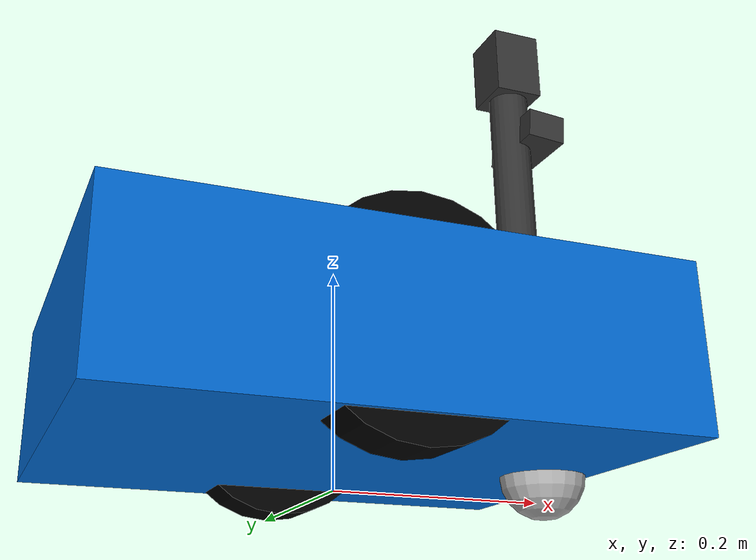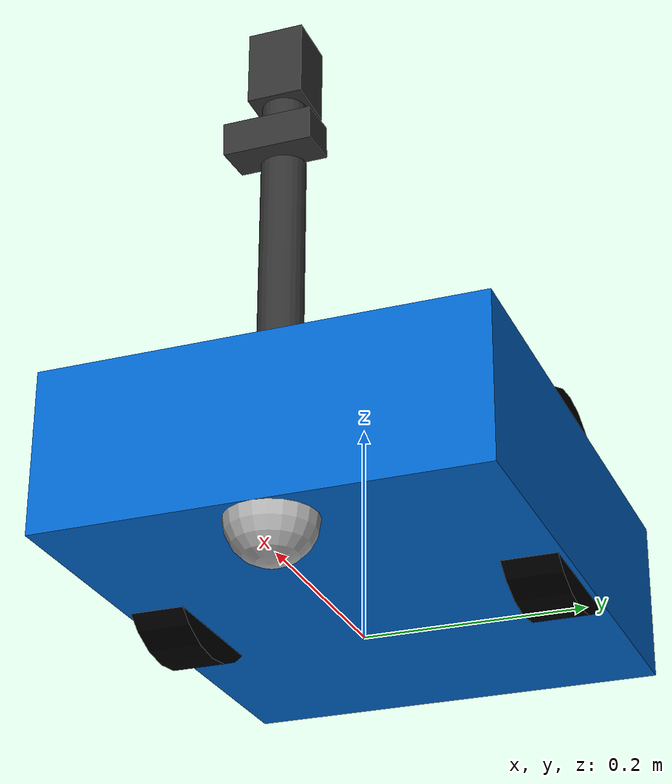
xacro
<?xml version="1.0"?>
<robot name="mobile_robot" xmlns:xacro="http://www.ros.org/wiki/xacro">

  <!--  PARAMETERS                                                          -->
  <xacro:property name="base_length"  value="0.50"/>
  <xacro:property name="base_width"   value="0.40"/>
  <xacro:property name="base_height"  value="0.15"/>
  <xacro:property name="base_mass"    value="10.0"/>

  <xacro:property name="wheel_radius" value="0.10"/>
  <xacro:property name="wheel_width"  value="0.05"/>
  <xacro:property name="wheel_mass"   value="0.50"/>
  <xacro:property name="wheel_sep"    value="0.34"/>   <!-- distance between wheels -->

  <xacro:property name="caster_radius" value="0.04"/>
  <xacro:property name="caster_mass"   value="0.10"/>

  <!-- Inertia macros -->
  <xacro:macro name="box_inertia" params="m l w h">
    <inertial>
      <mass value="${m}"/>
      <inertia ixx="${m*(w*w+h*h)/12}" ixy="0" ixz="0"
               iyy="${m*(l*l+h*h)/12}" iyz="0"
               izz="${m*(l*l+w*w)/12}"/>
    </inertial>
  </xacro:macro>

  <xacro:macro name="cylinder_inertia" params="m r h">
    <inertial>
      <mass value="${m}"/>
      <inertia ixx="${m*(3*r*r+h*h)/12}" ixy="0" ixz="0"
               iyy="${m*(3*r*r+h*h)/12}" iyz="0"
               izz="${m*r*r/2}"/>
    </inertial>
  </xacro:macro>

  <xacro:macro name="sphere_inertia" params="m r">
    <inertial>
      <mass value="${m}"/>
      <inertia ixx="${2*m*r*r/5}" ixy="0" ixz="0"
               iyy="${2*m*r*r/5}" iyz="0"
               izz="${2*m*r*r/5}"/>
    </inertial>
  </xacro:macro>

  <!--  MATERIALS                                                           -->
  <material name="dark_grey"><color rgba="0.2 0.2 0.2 1.0"/></material>
  <material name="light_grey"><color rgba="0.7 0.7 0.7 1.0"/></material>
  <material name="black"><color rgba="0.0 0.0 0.0 1.0"/></material>
  <material name="blue"><color rgba="0.0 0.4 0.8 1.0"/></material>
  <material name="red"><color rgba="0.8 0.1 0.1 1.0"/></material>

  <!--  BASE LINK (chassis)                                                 -->
  <link name="base_footprint"/>

  <joint name="base_footprint_joint" type="fixed">
    <parent link="base_footprint"/>
    <child  link="base_link"/>
    <origin xyz="0 0 ${wheel_radius}" rpy="0 0 0"/>
  </joint>

  <link name="base_link">
    <visual>
      <geometry>
        <box size="${base_length} ${base_width} ${base_height}"/>
      </geometry>
      <material name="blue"/>
    </visual>
    <collision>
      <geometry>
        <box size="${base_length} ${base_width} ${base_height}"/>
      </geometry>
    </collision>
    <xacro:box_inertia m="${base_mass}" l="${base_length}" w="${base_width}" h="${base_height}"/>
  </link>

  <!--  WHEEL MACRO                                                         -->
  <xacro:macro name="wheel" params="prefix reflect">
    <link name="${prefix}_wheel">
      <visual>
        <geometry>
          <cylinder radius="${wheel_radius}" length="${wheel_width}"/>
        </geometry>
        <material name="black"/>
      </visual>
      <collision>
        <geometry>
          <cylinder radius="${wheel_radius}" length="${wheel_width}"/>
        </geometry>
      </collision>
      <xacro:cylinder_inertia m="${wheel_mass}" r="${wheel_radius}" h="${wheel_width}"/>
    </link>

    <joint name="${prefix}_wheel_joint" type="continuous">
      <parent link="base_link"/>
      <child  link="${prefix}_wheel"/>
      <origin xyz="0 ${reflect * wheel_sep/2} 0" rpy="${-pi/2} 0 0"/>
      <axis xyz="0 0 1"/>
      <dynamics damping="0.01" friction="0.1"/>
    </joint>
  </xacro:macro>

  <xacro:wheel prefix="left"  reflect="1"/>
  <xacro:wheel prefix="right" reflect="-1"/>

  <!--  CASTER WHEEL (front)                                                -->
  <link name="caster_wheel">
    <visual>
      <geometry><sphere radius="${caster_radius}"/></geometry>
      <material name="light_grey"/>
    </visual>
    <collision>
      <geometry><sphere radius="${caster_radius}"/></geometry>
    </collision>
    <xacro:sphere_inertia m="${caster_mass}" r="${caster_radius}"/>
  </link>

  <joint name="caster_wheel_joint" type="fixed">
    <parent link="base_link"/>
    <child  link="caster_wheel"/>
    <origin xyz="${base_length/2 - caster_radius} 0 ${-base_height/2}" rpy="0 0 0"/>
  </joint>

  <!--  SENSOR MAST                                                         -->
  <link name="sensor_mast">
    <visual>
      <geometry><cylinder radius="0.02" length="0.25"/></geometry>
      <material name="dark_grey"/>
    </visual>
    <collision>
      <geometry><cylinder radius="0.02" length="0.25"/></geometry>
    </collision>
    <inertial>
      <mass value="0.3"/>
      <inertia ixx="0.001" ixy="0" ixz="0" iyy="0.001" iyz="0" izz="0.0001"/>
    </inertial>
  </link>

  <joint name="sensor_mast_joint" type="fixed">
    <parent link="base_link"/>
    <child  link="sensor_mast"/>
    <origin xyz="${base_length/2 - 0.05} 0 ${base_height/2 + 0.125}" rpy="0 0 0"/>
  </joint>

  <!--  LASER SCANNER LINK (Hokuyo UTM-30LX)                               -->
  <link name="laser_link">
    <visual>
      <geometry><box size="0.05 0.05 0.07"/></geometry>
      <material name="dark_grey"/>
    </visual>
    <collision>
      <geometry><box size="0.05 0.05 0.07"/></geometry>
    </collision>
    <inertial>
      <mass value="0.27"/>
      <inertia ixx="0.0001" ixy="0" ixz="0" iyy="0.0001" iyz="0" izz="0.0001"/>
    </inertial>
  </link>

  <joint name="laser_joint" type="fixed">
    <parent link="sensor_mast"/>
    <child  link="laser_link"/>
    <origin xyz="0 0 0.16" rpy="0 0 0"/>
  </joint>

  <!--  CAMERA LINK                                                          -->
  <link name="camera_link">
    <visual>
      <geometry><box size="0.04 0.08 0.03"/></geometry>
      <material name="dark_grey"/>
    </visual>
    <collision>
      <geometry><box size="0.04 0.08 0.03"/></geometry>
    </collision>
    <inertial>
      <mass value="0.10"/>
      <inertia ixx="0.00001" ixy="0" ixz="0" iyy="0.00001" iyz="0" izz="0.00001"/>
    </inertial>
  </link>

  <joint name="camera_joint" type="fixed">
    <parent link="sensor_mast"/>
    <child  link="camera_link"/>
    <!-- Camera mounted 5 cm below LiDAR, tilted 5 degrees down -->
    <origin xyz="0.02 0 0.08" rpy="0 0.087 0"/>
  </joint>

  <!-- Camera optical frame (ROS convention: Z forward, X right, Y down) -->
  <link name="camera_optical_link"/>
  <joint name="camera_optical_joint" type="fixed">
    <parent link="camera_link"/>
    <child  link="camera_optical_link"/>
    <origin xyz="0 0 0" rpy="${-pi/2} 0 ${-pi/2}"/>
  </joint>

  <!--  GAZEBO (gz sim / Harmonic) PLUGINS                                  -->

  <!-- Differential Drive Controller (gz sim) -->
  <gazebo>
    <plugin filename="gz-sim-diff-drive-system" name="gz::sim::systems::DiffDrive">
      <left_joint>left_wheel_joint</left_joint>
      <right_joint>right_wheel_joint</right_joint>
      <wheel_separation>${wheel_sep}</wheel_separation>
      <wheel_radius>${wheel_radius}</wheel_radius>
      <max_linear_acceleration>2.0</max_linear_acceleration>
      <topic>cmd_vel</topic>
      <odom_topic>odom</odom_topic>
      <frame_id>odom</frame_id>
      <child_frame_id>base_footprint</child_frame_id>
      <odom_publisher_frequency>50</odom_publisher_frequency>
      <tf_topic>/tf</tf_topic>
    </plugin>
  </gazebo>

  <!-- Ground Truth Odometry (from actual Gazebo model pose, no drift) -->
  <gazebo>
    <plugin filename="gz-sim-odometry-publisher-system" name="gz::sim::systems::OdometryPublisher">
      <dimensions>3</dimensions>
      <odom_topic>/odom_ground_truth</odom_topic>
      <odom_frame>odom</odom_frame>
      <robot_base_frame>base_footprint</robot_base_frame>
      <odom_publish_frequency>50</odom_publish_frequency>
    </plugin>
  </gazebo>

  <!-- Hokuyo UTM-30LX LiDAR (gz sim gpu_lidar sensor) -->
  <!-- Specs: 270° FOV, 0.25° resolution (1080 rays), 30 m range, 10 Hz -->
  <gazebo reference="laser_link">
    <sensor name="hokuyo_lidar" type="gpu_lidar">
      <always_on>true</always_on>
      <update_rate>10</update_rate>
      <visualize>false</visualize>
      <topic>scan</topic>
      <gz_frame_id>laser_link</gz_frame_id>
      <lidar>
        <scan>
          <horizontal>
            <samples>1080</samples>
            <resolution>1</resolution>
            <!-- 270 degrees = 4.7124 rad; centred on 0 -->
            <min_angle>-2.3562</min_angle>
            <max_angle>2.3562</max_angle>
          </horizontal>
        </scan>
        <range>
          <min>0.10</min>
          <max>30.0</max>
          <resolution>0.01</resolution>
        </range>
        <noise>
          <type>gaussian</type>
          <mean>0.0</mean>
          <stddev>0.01</stddev>
        </noise>
      </lidar>
    </sensor>
  </gazebo>

  <!-- RGB Camera — 640x480, 30 fps (gz sim camera sensor) -->
  <gazebo reference="camera_link">
    <sensor name="rgb_camera" type="camera">
      <always_on>true</always_on>
      <update_rate>30</update_rate>
      <visualize>true</visualize>
      <topic>camera/image_raw</topic>
      <gz_frame_id>camera_optical_link</gz_frame_id>
      <camera name="camera">
        <camera_info_topic>camera/camera_info</camera_info_topic>
        <horizontal_fov>1.3962634</horizontal_fov>   <!-- 80 degrees -->
        <image>
          <width>640</width>
          <height>480</height>
          <format>R8G8B8</format>
        </image>
        <clip>
          <near>0.02</near>
          <far>50.0</far>
        </clip>
        <noise>
          <type>gaussian</type>
          <mean>0.0</mean>
          <stddev>0.007</stddev>
        </noise>
        <distortion>
          <k1>0.0</k1><k2>0.0</k2><k3>0.0</k3>
          <p1>0.0</p1><p2>0.0</p2>
          <center>0.5 0.5</center>
        </distortion>
      </camera>
    </sensor>
  </gazebo>

  <!-- Joint State Publisher Plugin (gz sim) -->
  <gazebo>
    <plugin filename="gz-sim-joint-state-publisher-system" name="gz::sim::systems::JointStatePublisher">
      <topic>joint_states</topic>
      <joint_name>left_wheel_joint</joint_name>
      <joint_name>right_wheel_joint</joint_name>
    </plugin>
  </gazebo>

  <!-- Surface friction properties -->
  <gazebo reference="base_link">
    <mu1>0.2</mu1>
    <mu2>0.2</mu2>
  </gazebo>

  <gazebo reference="left_wheel">
    <mu1>1.0</mu1>
    <mu2>1.0</mu2>
    <kp>500000.0</kp>
    <kd>10.0</kd>
  </gazebo>

  <gazebo reference="right_wheel">
    <mu1>1.0</mu1>
    <mu2>1.0</mu2>
    <kp>500000.0</kp>
    <kd>10.0</kd>
  </gazebo>

  <gazebo reference="caster_wheel">
    <mu1>0.01</mu1>
    <mu2>0.01</mu2>
  </gazebo>

</robot>
